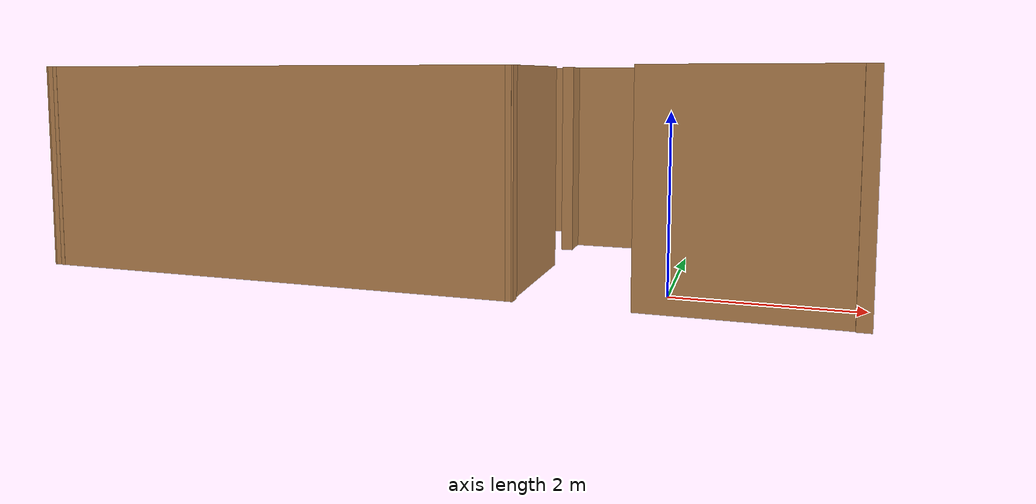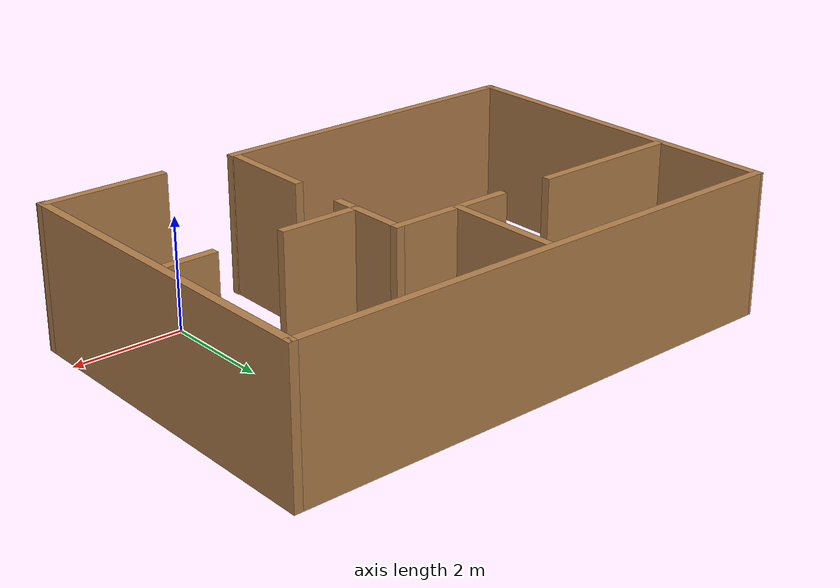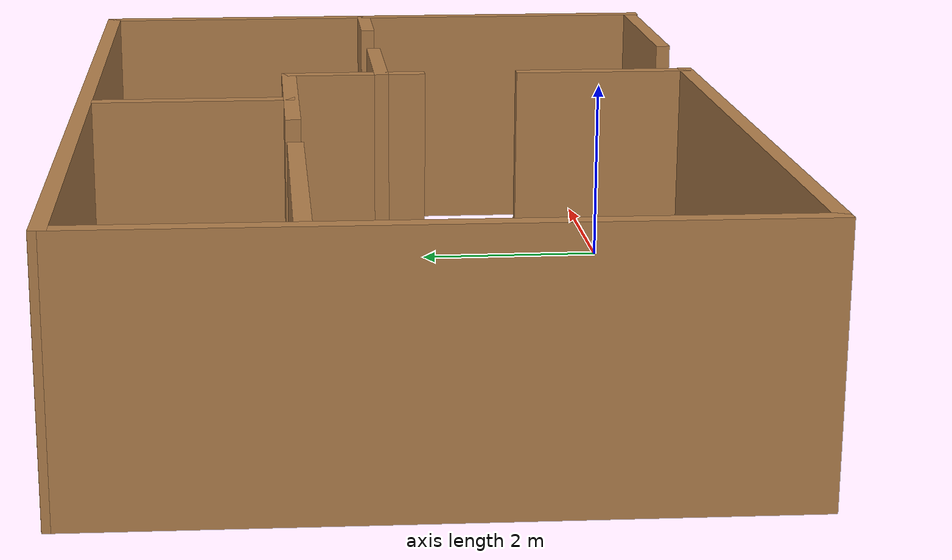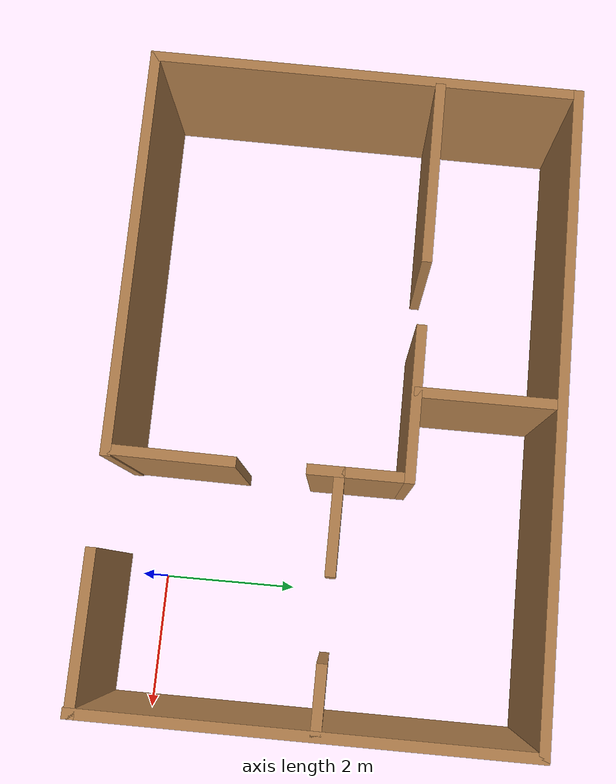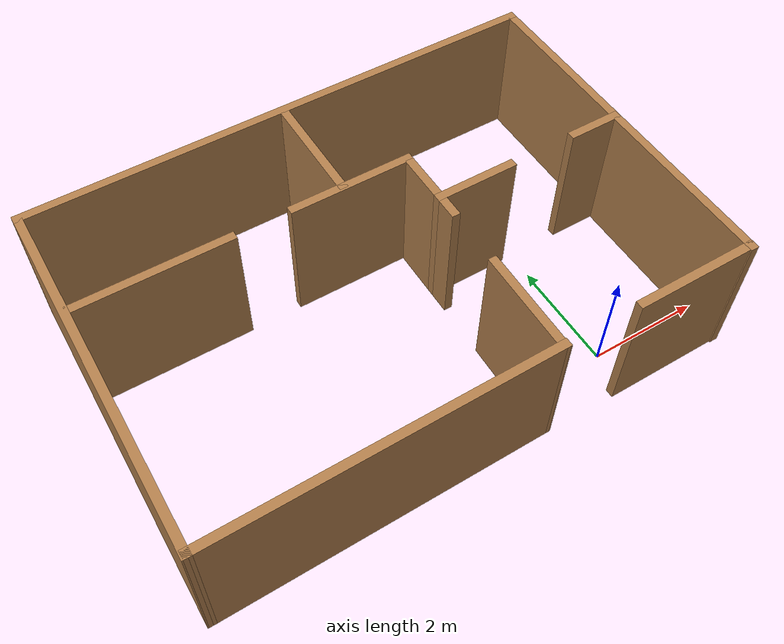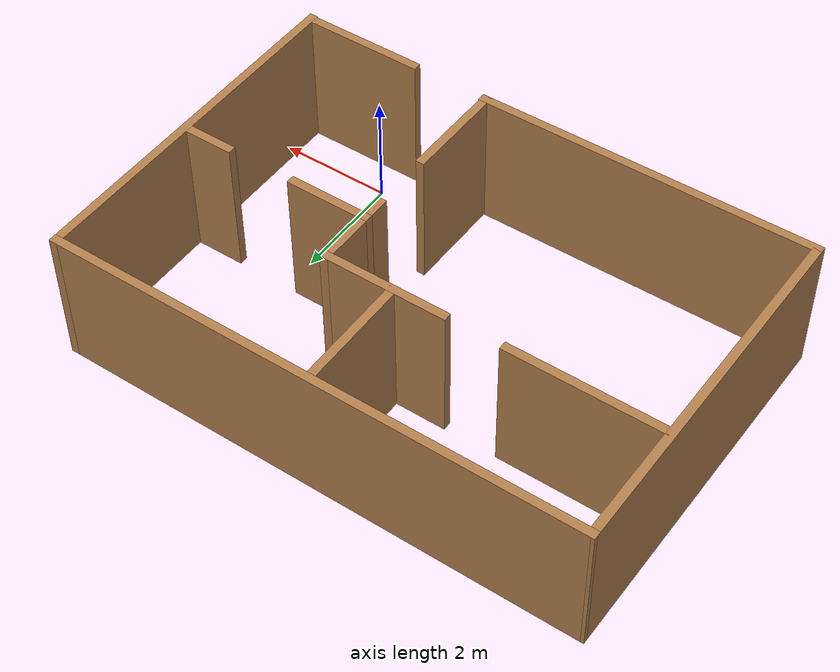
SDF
<?xml version='1.0'?>
<sdf version='1.6'>
  <model name='stage'>
    <pose frame=''>-2.81851 2.44711 0 0 -0 0</pose>
    <link name='Wall_11'>
      <collision name='Wall_11_Collision'>
        <geometry>
          <box>
            <size>1.5 0.15 2.5</size>
          </box>
        </geometry>
        <pose frame=''>0 0 1.25 0 -0 0</pose>
      </collision>
      <visual name='Wall_11_Visual'>
        <pose frame=''>0 0 1.25 0 -0 0</pose>
        <geometry>
          <box>
            <size>1.5 0.15 2.5</size>
          </box>
        </geometry>
        <material>
          <script>
            <uri>file://media/materials/scripts/gazebo.material</uri>
            <name>Gazebo/Wood</name>
          </script>
          <ambient>1 1 1 1</ambient>
        </material>
        <meta>
          <layer>0</layer>
        </meta>
      </visual>
      <pose frame=''>1.20934 0.429664 0 0 -0 1.5708</pose>
    </link>
    <link name='Wall_12'>
      <collision name='Wall_12_Collision'>
        <geometry>
          <box>
            <size>2.25 0.15 2.5</size>
          </box>
        </geometry>
        <pose frame=''>0 0 1.25 0 -0 0</pose>
      </collision>
      <visual name='Wall_12_Visual'>
        <pose frame=''>0 0 1.25 0 -0 0</pose>
        <geometry>
          <box>
            <size>2.25 0.15 2.5</size>
          </box>
        </geometry>
        <material>
          <script>
            <uri>file://media/materials/scripts/gazebo.material</uri>
            <name>Gazebo/Wood</name>
          </script>
          <ambient>1 1 1 1</ambient>
        </material>
        <meta>
          <layer>0</layer>
        </meta>
      </visual>
      <pose frame=''>0.159345 1.10466 0 0 -0 3.14159</pose>
    </link>
    <link name='Wall_16'>
      <collision name='Wall_16_Collision'>
        <geometry>
          <box>
            <size>2.75 0.15 2.5</size>
          </box>
        </geometry>
        <pose frame=''>0 0 1.25 0 -0 0</pose>
      </collision>
      <visual name='Wall_16_Visual'>
        <pose frame=''>0 0 1.25 0 -0 0</pose>
        <geometry>
          <box>
            <size>2.75 0.15 2.5</size>
          </box>
        </geometry>
        <material>
          <script>
            <uri>file://media/materials/scripts/gazebo.material</uri>
            <name>Gazebo/Wood</name>
          </script>
          <ambient>1 1 1 1</ambient>
        </material>
        <meta>
          <layer>0</layer>
        </meta>
      </visual>
      <pose frame=''>-3.2686 1.10227 0 0 -0 3.14159</pose>
    </link>
    <link name='Wall_18'>
      <collision name='Wall_18_Collision'>
        <geometry>
          <box>
            <size>2 0.15 2.5</size>
          </box>
        </geometry>
        <pose frame=''>0 0 1.25 0 -0 0</pose>
      </collision>
      <visual name='Wall_18_Visual'>
        <pose frame=''>0 0 1.25 0 -0 0</pose>
        <geometry>
          <box>
            <size>2 0.15 2.5</size>
          </box>
        </geometry>
        <material>
          <script>
            <uri>file://media/materials/scripts/gazebo.material</uri>
            <name>Gazebo/Wood</name>
          </script>
          <ambient>1 1 1 1</ambient>
        </material>
        <meta>
          <layer>0</layer>
        </meta>
      </visual>
      <pose frame=''>0.00253 2.0675 0 0 -0 1.5708</pose>
    </link>
    <link name='Wall_20'>
      <collision name='Wall_20_Collision'>
        <geometry>
          <box>
            <size>1.5 0.15 2.5</size>
          </box>
        </geometry>
        <pose frame=''>0 0 1.25 0 -0 0</pose>
      </collision>
      <visual name='Wall_20_Visual'>
        <pose frame=''>0 0 1.25 0 -0 0</pose>
        <geometry>
          <box>
            <size>1.5 0.15 2.5</size>
          </box>
        </geometry>
        <material>
          <script>
            <uri>file://media/materials/scripts/gazebo.material</uri>
            <name>Gazebo/Wood</name>
          </script>
          <ambient>1 1 1 1</ambient>
        </material>
        <meta>
          <layer>0</layer>
        </meta>
      </visual>
      <pose frame=''>1.88434 0.136822 0 0 -0 0</pose>
    </link>
    <link name='Wall_22'>
      <collision name='Wall_22_Collision'>
        <geometry>
          <box>
            <size>1 0.15 2.5</size>
          </box>
        </geometry>
        <pose frame=''>0 0 1.25 0 -0 0</pose>
      </collision>
      <visual name='Wall_22_Visual'>
        <pose frame=''>0 0 1.25 0 -0 0</pose>
        <geometry>
          <box>
            <size>1 0.15 2.5</size>
          </box>
        </geometry>
        <material>
          <script>
            <uri>file://media/materials/scripts/gazebo.material</uri>
            <name>Gazebo/Wood</name>
          </script>
          <ambient>1 1 1 1</ambient>
        </material>
        <meta>
          <layer>0</layer>
        </meta>
      </visual>
      <pose frame=''>4.26922 0.136822 0 0 -0 0</pose>
    </link>
    <link name='Wall_3'>
      <collision name='Wall_3_Collision'>
        <geometry>
          <box>
            <size>1.88227 0.15 2.5</size>
          </box>
        </geometry>
        <pose frame=''>0 0 1.25 0 -0 0</pose>
      </collision>
      <visual name='Wall_3_Visual'>
        <pose frame=''>0 0 1.25 0 -0 0</pose>
        <geometry>
          <box>
            <size>1.88227 0.15 2.5</size>
          </box>
        </geometry>
        <material>
          <script>
            <uri>file://media/materials/scripts/gazebo.material</uri>
            <name>Gazebo/Wood</name>
          </script>
          <ambient>1 1 1 1</ambient>
        </material>
        <meta>
          <layer>0</layer>
        </meta>
      </visual>
      <pose frame=''>1.19547 -2.22989 0 0 -0 1.55919</pose>
    </link>
    <link name='Wall_5'>
      <collision name='Wall_5_Collision'>
        <geometry>
          <box>
            <size>6.04037 0.15 2.5</size>
          </box>
        </geometry>
        <pose frame=''>0 0 1.25 0 -0 0</pose>
      </collision>
      <visual name='Wall_5_Visual'>
        <pose frame=''>0 0 1.25 0 -0 0</pose>
        <geometry>
          <box>
            <size>6.04037 0.15 2.5</size>
          </box>
        </geometry>
        <material>
          <script>
            <uri>file://media/materials/scripts/gazebo.material</uri>
            <name>Gazebo/Wood</name>
          </script>
          <ambient>1 1 1 1</ambient>
        </material>
        <meta>
          <layer>0</layer>
        </meta>
      </visual>
      <pose frame=''>-1.73958 -3.11608 0 0 -0 -3.13476</pose>
    </link>
    <link name='Wall_6'>
      <collision name='Wall_6_Collision'>
        <geometry>
          <box>
            <size>6.42242 0.15 2.5</size>
          </box>
        </geometry>
        <pose frame=''>0 0 1.25 0 -0 0</pose>
      </collision>
      <visual name='Wall_6_Visual'>
        <pose frame=''>0 0 1.25 0 -0 0</pose>
        <geometry>
          <box>
            <size>6.42242 0.15 2.5</size>
          </box>
        </geometry>
        <material>
          <script>
            <uri>file://media/materials/scripts/gazebo.material</uri>
            <name>Gazebo/Wood</name>
          </script>
          <ambient>1 1 1 1</ambient>
        </material>
        <meta>
          <layer>0</layer>
        </meta>
      </visual>
      <pose frame=''>-4.67464 0 0 0 -0 1.56118</pose>
    </link>
    <link name='Wall_7'>
      <collision name='Wall_7_Collision'>
        <geometry>
          <box>
            <size>9.5 0.15 2.5</size>
          </box>
        </geometry>
        <pose frame=''>0 0 1.25 0 -0 0</pose>
      </collision>
      <visual name='Wall_7_Visual'>
        <pose frame=''>0 0 1.25 0 -0 0</pose>
        <geometry>
          <box>
            <size>9.5 0.15 2.5</size>
          </box>
        </geometry>
        <material>
          <script>
            <uri>file://media/materials/scripts/gazebo.material</uri>
            <name>Gazebo/Wood</name>
          </script>
          <ambient>1 1 1 1</ambient>
        </material>
        <meta>
          <layer>0</layer>
        </meta>
      </visual>
      <pose frame=''>0.030529 3.13619 0 0 -0 0</pose>
    </link>
    <link name='Wall_8'>
      <collision name='Wall_8_Collision'>
        <geometry>
          <box>
            <size>6.42239 0.15 2.5</size>
          </box>
        </geometry>
        <pose frame=''>0 0 1.25 0 -0 0</pose>
      </collision>
      <visual name='Wall_8_Visual'>
        <pose frame=''>0 0 1.25 0 -0 0</pose>
        <geometry>
          <box>
            <size>6.42239 0.15 2.5</size>
          </box>
        </geometry>
        <material>
          <script>
            <uri>file://media/materials/scripts/gazebo.material</uri>
            <name>Gazebo/Wood</name>
          </script>
          <ambient>1 1 1 1</ambient>
        </material>
        <meta>
          <layer>0</layer>
        </meta>
      </visual>
      <pose frame=''>4.70553 0 0 0 -0 -1.5708</pose>
    </link>
    <link name='Wall_9'>
      <collision name='Wall_9_Collision'>
        <geometry>
          <box>
            <size>2.25 0.15 2.5</size>
          </box>
        </geometry>
        <pose frame=''>0 0 1.25 0 -0 0</pose>
      </collision>
      <visual name='Wall_9_Visual'>
        <pose frame=''>0 0 1.25 0 -0 0</pose>
        <geometry>
          <box>
            <size>2.25 0.15 2.5</size>
          </box>
        </geometry>
        <material>
          <script>
            <uri>file://media/materials/scripts/gazebo.material</uri>
            <name>Gazebo/Wood</name>
          </script>
          <ambient>1 1 1 1</ambient>
        </material>
        <meta>
          <layer>0</layer>
        </meta>
      </visual>
      <pose frame=''>3.65553 -3.11608 0 0 -0 3.14159</pose>
    </link>
    <static>1</static>
  </model>
</sdf>
